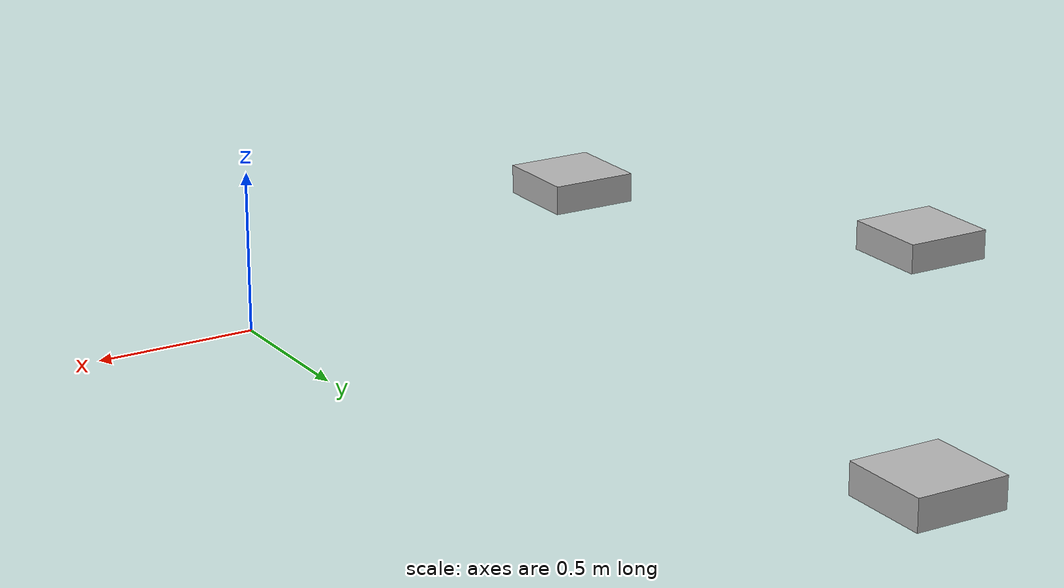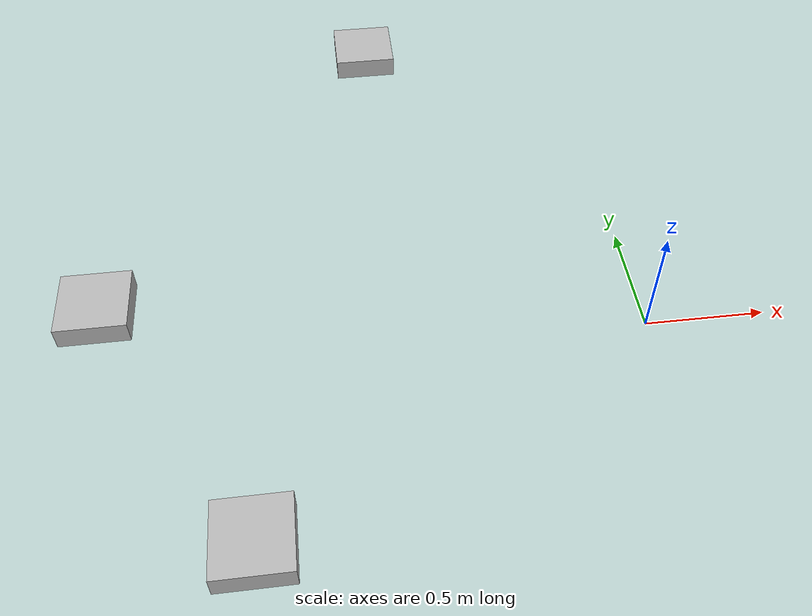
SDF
<?xml version="1.0" ?>
<sdf version="1.5">
<model name="multiple_drones">
<static> 0 </static>
<include>
<uri>model://drone</uri>
<pose>-2.2735384743313207	0.36376155696000817	0.0	0.0	0.0	0.0	</pose>
<name>drone0</name>
</include>
<plugin filename="libqrotor_gazebo_plugin.so" name="qrotor_plugin_drone0">
<linkName>drone0::base_link</linkName>
<namespace>drone0</namespace>
<updateRate>500.0</updateRate>
</plugin>

<include>
<uri>model://drone</uri>
<pose>-1.0076870891608054	2.023796306305307	0.0	0.0	0.0	0.0	</pose>
<name>drone1</name>
</include>
<plugin filename="libqrotor_gazebo_plugin.so" name="qrotor_plugin_drone1">
<linkName>drone1::base_link</linkName>
<namespace>drone1</namespace>
<updateRate>500.0</updateRate>
</plugin>

<include>
<uri>model://drone</uri>
<pose>-1.620521141094036	-0.7682281718355131	0.0	0.0	0.0	0.0	</pose>
<name>drone2</name>
</include>
<plugin filename="libqrotor_gazebo_plugin.so" name="qrotor_plugin_drone2">
<linkName>drone2::base_link</linkName>
<namespace>drone2</namespace>
<updateRate>500.0</updateRate>
</plugin>

</model>
</sdf>

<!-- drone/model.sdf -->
<sdf version="1.9">
  <model name="drone">
    <pose>0 0 0.5 0 0 0</pose>
    <link name="base_link">
      <inertial>
        <mass>1.0</mass>
        <inertia>
          <ixx>0.002</ixx><iyy>0.002</iyy><izz>0.003</izz>
          <ixy>0</ixy><ixz>0</ixz><iyz>0</iyz>
        </inertia>
      </inertial>
      <collision name="col">
        <geometry><box><size>0.3 0.3 0.1</size></box></geometry>
      </collision>
      <visual name="vis">
        <geometry><box><size>0.3 0.3 0.1</size></box></geometry>
      </visual>
    </link>

    <plugin name="lin_vel" filename="gz-sim-linear-velocity-control-system">
      <topic>/model/drone/cmd_vel</topic>
      <use_world_frame>false</use_world_frame>
      <limit>3.0</limit>
    </plugin>
    <plugin name="ang_vel" filename="gz-sim-angular-velocity-control-system">
      <topic>/model/drone/cmd_vel</topic>
      <use_world_frame>false</use_world_frame>
      <limit>2.0</limit>
    </plugin>
    <plugin name="odom_pub" filename="gz-sim-odometry-publisher-system">
      <frame_id>world</frame_id>
      <child_frame_id>drone/base_link</child_frame_id>
      <topic>/model/drone/odometry</topic>
      <publish_velocity>true</publish_velocity>
    </plugin>
  </model>
</sdf>
